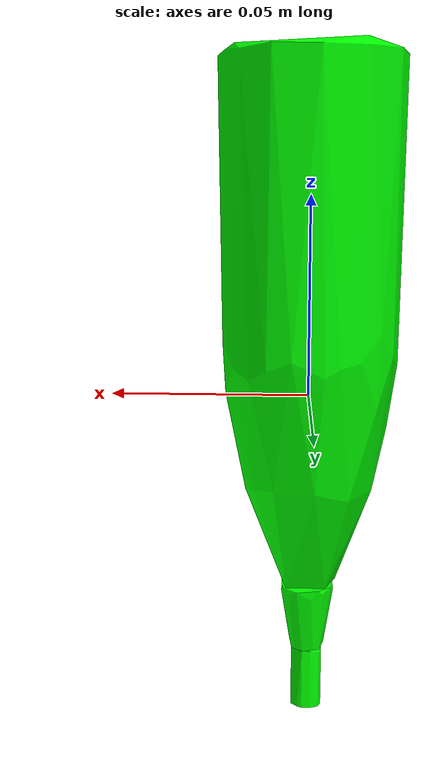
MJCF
<mujoco model="obj2">
  <asset>
    <mesh file="meshes/obj2/obj2_0.stl" name="obj2_0"/>
    <mesh file="meshes/obj2/obj2_1.stl" name="obj2_1"/>
    <mesh file="meshes/obj2/obj2_2.stl" name="obj2_2"/>
  </asset>
  <worldbody>
    <body>
      <body name="collision">
        <geom condim="4" density="100" friction="0.95 0.3 0.1" group="1" mesh="obj2_0" pos="0 0 0" rgba="0 1 0 1" solimp="0.998 0.998 0.001" solref="0.001 1" type="mesh"/>
        <geom condim="4" density="100" friction="0.95 0.3 0.1" group="1" mesh="obj2_1" pos="0 0 0" rgba="0 1 0 1" solimp="0.998 0.998 0.001" solref="0.001 1" type="mesh"/>
        <geom condim="4" density="100" friction="0.95 0.3 0.1" group="1" mesh="obj2_2" pos="0 0 0" rgba="0 1 0 1" solimp="0.998 0.998 0.001" solref="0.001 1" type="mesh"/>
      </body>
      <body name="visual">
        <geom conaffinity="0" contype="0" group="0" mass="0.0001" mesh="obj2_0" pos="0 0 0" rgba="0 1 0 1" type="mesh"/>
        <geom conaffinity="0" contype="0" group="0" mass="0.0001" mesh="obj2_1" pos="0 0 0" rgba="0 1 0 1" type="mesh"/>
        <geom conaffinity="0" contype="0" group="0" mass="0.0001" mesh="obj2_2" pos="0 0 0" rgba="0 1 0 1" type="mesh"/>
      </body>
      <site name="bottom_site" pos="0 0 -0.06" rgba="0 0 0 0" size="0.005"/>
      <site name="top_site" pos="0 0 0.04" rgba="0 0 0 0" size="0.005"/>
      <site name="horizontal_radius_site" pos="0.025 0.025 0" rgba="0 0 0 0" size="0.005"/>
    </body>
  </worldbody>
</mujoco>
